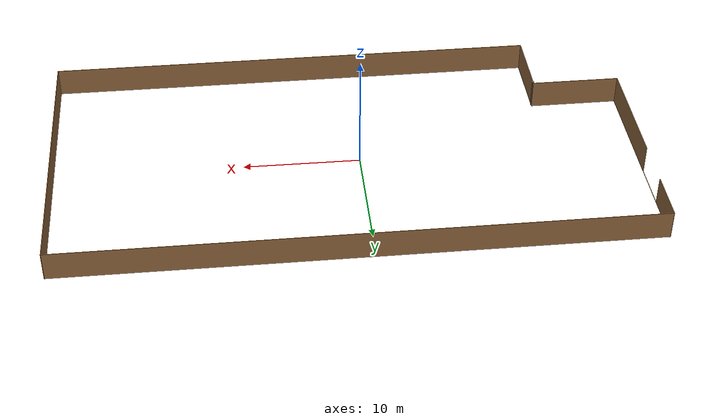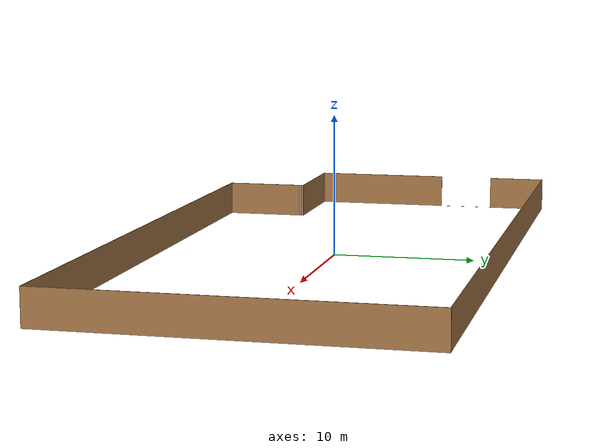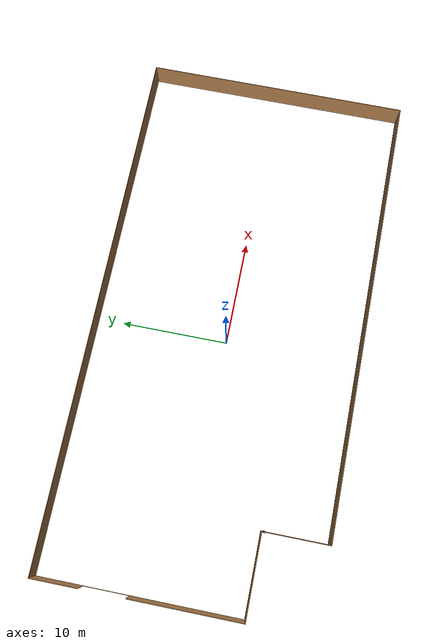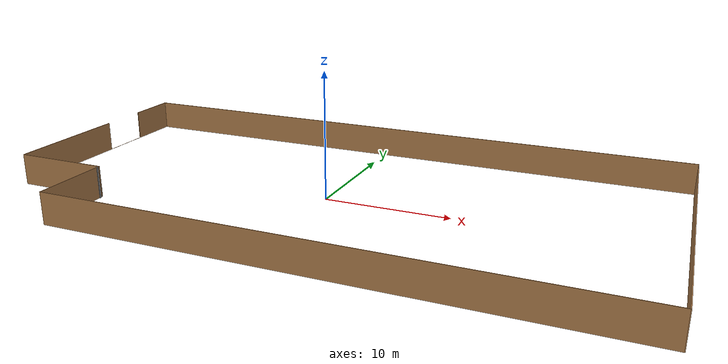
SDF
<?xml version='1.0'?>
<sdf version='1.6'>
  <model name='riseholme_encolsure_2'>
    <pose frame=''>1.118 -0.029086 0 0 -0 0</pose>
    <link name='Wall_0'>
      <collision name='Wall_0_Collision'>
        <geometry>
          <box>
            <size>50 0.05 2.5</size>
          </box>
        </geometry>
        <pose frame=''>0 0 1.25 0 -0 0</pose>
      </collision>
      <visual name='Wall_0_Visual'>
        <pose frame=''>0 0 1.25 0 -0 0</pose>
        <geometry>
          <box>
            <size>50 0.05 2.5</size>
          </box>
        </geometry>
        <material>
          <script>
            <uri>file://media/materials/scripts/gazebo.material</uri>
            <name>Gazebo/Wood</name>
          </script>
          <ambient>1 1 1 1</ambient>
        </material>
        <meta>
          <layer>0</layer>
        </meta>
      </visual>
      <pose frame=''>0 12.4211 0 0 -0 0</pose>
    </link>
    <link name='Wall_1'>
      <collision name='Wall_1_Collision'>
        <geometry>
          <box>
            <size>24.9003 0.05 2.5</size>
          </box>
        </geometry>
        <pose frame=''>0 0 1.25 0 -0 0</pose>
      </collision>
      <visual name='Wall_1_Visual'>
        <pose frame=''>0 0 1.25 0 -0 0</pose>
        <geometry>
          <box>
            <size>24.9003 0.05 2.5</size>
          </box>
        </geometry>
        <material>
          <script>
            <uri>file://media/materials/scripts/gazebo.material</uri>
            <name>Gazebo/Wood</name>
          </script>
          <ambient>1 1 1 1</ambient>
        </material>
        <meta>
          <layer>0</layer>
        </meta>
      </visual>
      <pose frame=''>24.975 -0.003914 0 0 -0 -1.5708</pose>
    </link>
    <link name='Wall_18'>
      <collision name='Wall_18_Collision'>
        <geometry>
          <box>
            <size>7.65 0.05 2.5</size>
          </box>
        </geometry>
        <pose frame=''>0 0 1.25 0 -0 0</pose>
      </collision>
      <visual name='Wall_18_Visual'>
        <pose frame=''>0 0 1.25 0 -0 0</pose>
        <geometry>
          <box>
            <size>7.65 0.05 2.5</size>
          </box>
        </geometry>
        <material>
          <script>
            <uri>file://media/materials/scripts/gazebo.material</uri>
            <name>Gazebo/Wood</name>
          </script>
          <ambient>1 1 1 1</ambient>
        </material>
        <meta>
          <layer>0</layer>
        </meta>
      </visual>
      <pose frame=''>-21.175 -6.32891 0 0 -0 3.14159</pose>
    </link>
    <link name='Wall_19'>
      <pose frame=''>-24.975 3.05009 0 0 -0 1.5708</pose>
      <visual name='Wall_19_Visual_0'>
        <pose frame=''>-4.25518 0 1.25 0 -0 0</pose>
        <geometry>
          <box>
            <size>10.2976 0.05 2.5</size>
          </box>
        </geometry>
        <material>
          <script>
            <uri>file://media/materials/scripts/gazebo.material</uri>
            <name>Gazebo/Wood</name>
          </script>
          <ambient>1 1 1 1</ambient>
        </material>
        <meta>
          <layer>0</layer>
        </meta>
      </visual>
      <collision name='Wall_19_Collision_0'>
        <geometry>
          <box>
            <size>10.2976 0.05 2.5</size>
          </box>
        </geometry>
        <pose frame=''>-4.25518 0 1.25 0 -0 0</pose>
      </collision>
      <visual name='Wall_19_Visual_1'>
        <pose frame=''>5.14882 0 0.00075 0 -0 0</pose>
        <geometry>
          <box>
            <size>8.51037 0.05 0.0015</size>
          </box>
        </geometry>
        <material>
          <script>
            <uri>file://media/materials/scripts/gazebo.material</uri>
            <name>Gazebo/Wood</name>
          </script>
          <ambient>1 1 1 1</ambient>
        </material>
        <meta>
          <layer>0</layer>
        </meta>
      </visual>
      <collision name='Wall_19_Collision_1'>
        <geometry>
          <box>
            <size>8.51037 0.05 0.0015</size>
          </box>
        </geometry>
        <pose frame=''>5.14882 0 0.00075 0 -0 0</pose>
      </collision>
      <visual name='Wall_19_Visual_2'>
        <pose frame=''>7.22532 0 1.25075 0 -0 0</pose>
        <geometry>
          <box>
            <size>4.35737 0.05 2.4985</size>
          </box>
        </geometry>
        <material>
          <script>
            <uri>file://media/materials/scripts/gazebo.material</uri>
            <name>Gazebo/Wood</name>
          </script>
          <ambient>1 1 1 1</ambient>
        </material>
        <meta>
          <layer>0</layer>
        </meta>
      </visual>
      <collision name='Wall_19_Collision_2'>
        <geometry>
          <box>
            <size>4.35737 0.05 2.4985</size>
          </box>
        </geometry>
        <pose frame=''>7.22532 0 1.25075 0 -0 0</pose>
      </collision>
    </link>
    <link name='Wall_2'>
      <collision name='Wall_2_Collision'>
        <geometry>
          <box>
            <size>42.3995 0.05 2.5</size>
          </box>
        </geometry>
        <pose frame=''>0 0 1.25 0 -0 0</pose>
      </collision>
      <visual name='Wall_2_Visual'>
        <pose frame=''>0 0 1.25 0 -0 0</pose>
        <geometry>
          <box>
            <size>42.3995 0.05 2.5</size>
          </box>
        </geometry>
        <material>
          <script>
            <uri>file://media/materials/scripts/gazebo.material</uri>
            <name>Gazebo/Wood</name>
          </script>
          <ambient>1 1 1 1</ambient>
        </material>
        <meta>
          <layer>0</layer>
        </meta>
      </visual>
      <pose frame=''>3.8 -12.4289 0 0 -0 3.14159</pose>
    </link>
    <link name='Wall_4'>
      <collision name='Wall_4_Collision'>
        <geometry>
          <box>
            <size>0.15 0.15 2.5</size>
          </box>
        </geometry>
        <pose frame=''>0 0 1.25 0 -0 0</pose>
      </collision>
      <visual name='Wall_4_Visual'>
        <pose frame=''>0 0 1.25 0 -0 0</pose>
        <geometry>
          <box>
            <size>0.15 0.15 2.5</size>
          </box>
        </geometry>
        <material>
          <script>
            <uri>file://media/materials/scripts/gazebo.material</uri>
            <name>Gazebo/Grey</name>
          </script>
          <ambient>1 1 1 1</ambient>
        </material>
        <meta>
          <layer>0</layer>
        </meta>
      </visual>
      <pose frame=''>-17.3745 -6.57926 0 0 -0 0</pose>
    </link>
    <link name='Wall_6'>
      <collision name='Wall_6_Collision'>
        <geometry>
          <box>
            <size>6.14966 0.05 2.5</size>
          </box>
        </geometry>
        <pose frame=''>0 0 1.25 0 -0 0</pose>
      </collision>
      <visual name='Wall_6_Visual'>
        <pose frame=''>0 0 1.25 0 -0 0</pose>
        <geometry>
          <box>
            <size>6.14966 0.05 2.5</size>
          </box>
        </geometry>
        <material>
          <script>
            <uri>file://media/materials/scripts/gazebo.material</uri>
            <name>Gazebo/Wood</name>
          </script>
          <ambient>1 1 1 1</ambient>
        </material>
        <meta>
          <layer>0</layer>
        </meta>
      </visual>
      <pose frame=''>-17.375 -9.37891 0 0 -0 1.5708</pose>
    </link>
    <static>1</static>
  </model>
</sdf>
